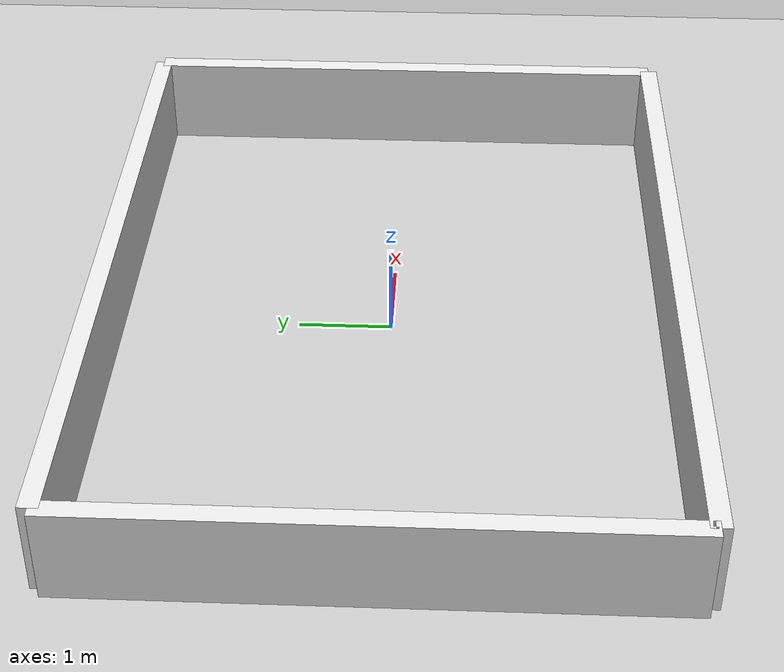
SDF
<?xml version="1.0"?>
<sdf version="1.6">
  <world name="default">

    <include>
      <uri>model://ground_plane</uri>
    </include>

    <include>
      <uri>model://sun</uri>
    </include>

    <scene>
      <shadows>false</shadows>
    </scene>

    <gui fullscreen='0'>
      <camera name='user_camera'>
        <pose frame=''>0.319654 -0.235002 9.29441 0 1.5138 0.009599</pose>
        <view_controller>orbit</view_controller>
        <projection_type>perspective</projection_type>
      </camera>
    </gui>

    <physics type="ode">
      <real_time_update_rate>1000.0</real_time_update_rate>
      <max_step_size>0.001</max_step_size>
      <real_time_factor>1</real_time_factor>
      <ode>
        <solver>
          <type>quick</type>
          <iters>150</iters>
          <precon_iters>0</precon_iters>
          <sor>1.400000</sor>
          <use_dynamic_moi_rescaling>1</use_dynamic_moi_rescaling>
        </solver>
        <constraints>
          <cfm>0.00001</cfm>
          <erp>0.2</erp>
          <contact_max_correcting_vel>2000.000000</contact_max_correcting_vel>
          <contact_surface_layer>0.01000</contact_surface_layer>
        </constraints>
      </ode>
    </physics>

    <model name="tb3_4walls">
      <static>1</static>
      <include>
        <uri>model://tb3_4walls</uri>
      </include>
    </model>

  </world>
</sdf>

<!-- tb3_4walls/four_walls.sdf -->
<sdf version='1.7'>
  <model name='white_wall'>
    <static>1</static>
    <link name='link_wall'>

      <collision name='wall_1'>
        <pose>0 3.0 0.5 0 -0 0</pose>
        <geometry>
          <box>
            <size>8.0 0.2 1.0</size>
          </box>
        </geometry>
        <max_contacts>10</max_contacts>
        <surface>
          <contact>
            <ode/>
          </contact>
          <bounce/>
          <friction>
            <torsional>
              <ode/>
            </torsional>
            <ode/>
          </friction>
        </surface>
      </collision>

      <visual name='wall_1'>
        <pose>0 3.0 0.5 0 -0 0</pose>
        <geometry>
          <box>
            <size>8.0 0.2 1.0</size>
          </box>
        </geometry>
        <material>
          <script>
            <uri>file://media/materials/scripts/gazebo.material</uri>
            <name>Gazebo/White</name>
          </script>
        </material>
      </visual>

      <collision name='wall_2'>
        <pose>0 -3.0 0.5 0 -0 0</pose>
        <geometry>
          <box>
            <size>8.0 0.2 1.0</size>
          </box>
        </geometry>
        <max_contacts>10</max_contacts>
        <surface>
          <contact>
            <ode/>
          </contact>
          <bounce/>
          <friction>
            <torsional>
              <ode/>
            </torsional>
            <ode/>
          </friction>
        </surface>
      </collision>

      <visual name='wall_2'>
        <pose>0 -3.0 0.5 0 -0 0</pose>
        <geometry>
          <box>
            <size>8.0 0.2 1.0</size>
          </box>
        </geometry>
        <material>
          <script>
            <uri>file://media/materials/scripts/gazebo.material</uri>
            <name>Gazebo/White</name>
          </script>
        </material>
      </visual>

      <collision name='wall_3'>
        <pose>4.0 0 0.5 0 -0 1.57</pose>
        <geometry>
          <box>
            <size>6.0 0.2 1.0</size>
          </box>
        </geometry>
        <max_contacts>10</max_contacts>
        <surface>
          <contact>
            <ode/>
          </contact>
          <bounce/>
          <friction>
            <torsional>
              <ode/>
            </torsional>
            <ode/>
          </friction>
        </surface>
      </collision>
      <visual name='wall_3'>
        <pose>4.0 0 0.5 0 -0 1.57</pose>
        <geometry>
          <box>
            <size>6.0 0.2 1.0</size>
          </box>
        </geometry>
        <material>
          <script>
            <uri>file://media/materials/scripts/gazebo.material</uri>
            <name>Gazebo/White</name>
          </script>
        </material>
      </visual>

      <collision name='wall_4'>
        <pose>-4.0 0 0.5 0 -0 1.57</pose>
        <geometry>
          <box>
            <size>6.0 0.2 1.0</size>
          </box>
        </geometry>
        <max_contacts>10</max_contacts>
        <surface>
          <contact>
            <ode/>
          </contact>
          <bounce/>
          <friction>
            <torsional>
              <ode/>
            </torsional>
            <ode/>
          </friction>
        </surface>
      </collision>
      <visual name='wall_4'>
        <pose>-4.0 0 0.5 0 -0 1.57</pose>
        <geometry>
          <box>
            <size>6.0 0.2 1.0</size>
          </box>
        </geometry>
        <material>
          <script>
            <uri>file://media/materials/scripts/gazebo.material</uri>
            <name>Gazebo/White</name>
          </script>
        </material>
      </visual>

      <self_collide>0</self_collide>
      <enable_wind>0</enable_wind>
      <kinematic>0</kinematic>
    </link>
  </model>
</sdf>
